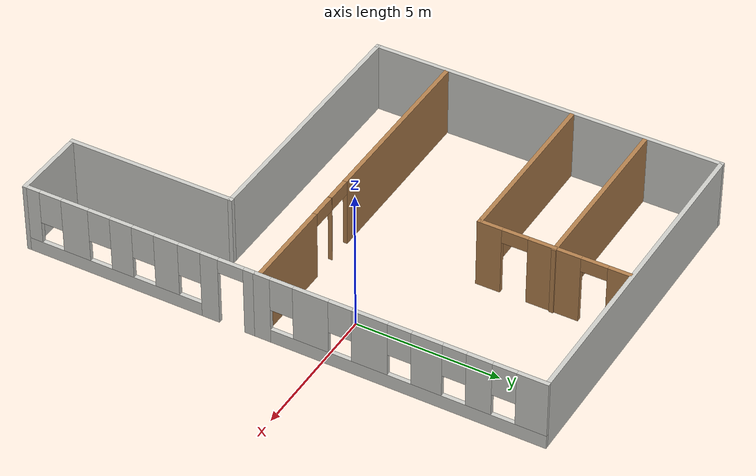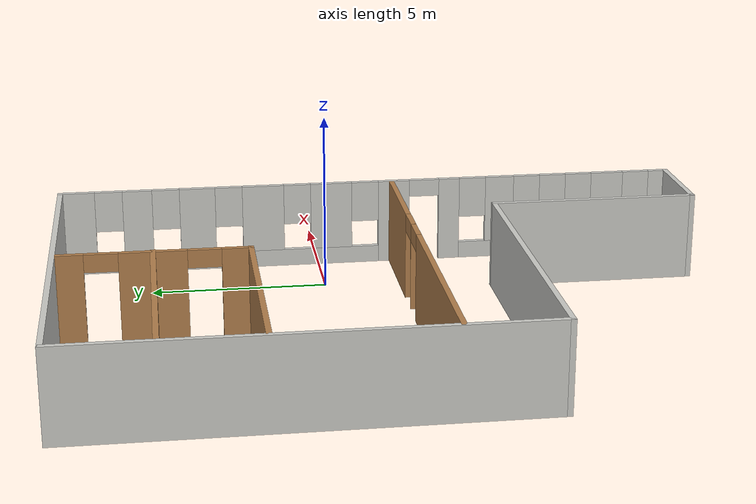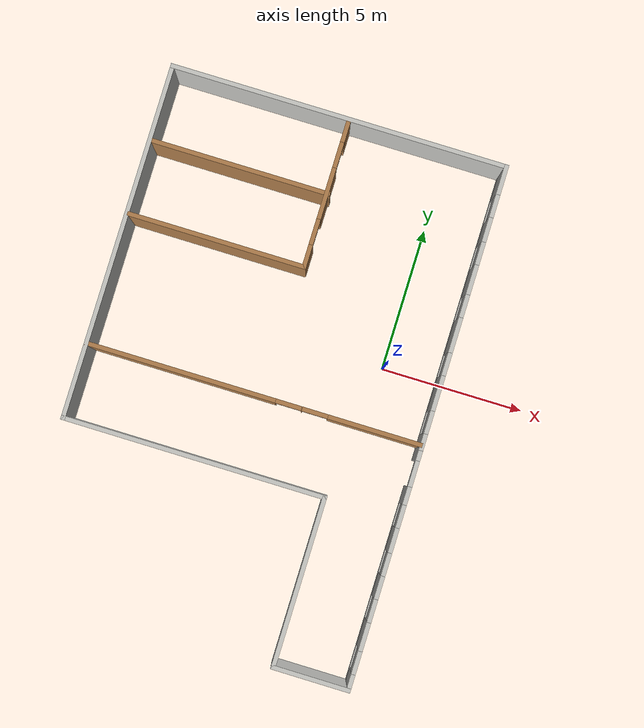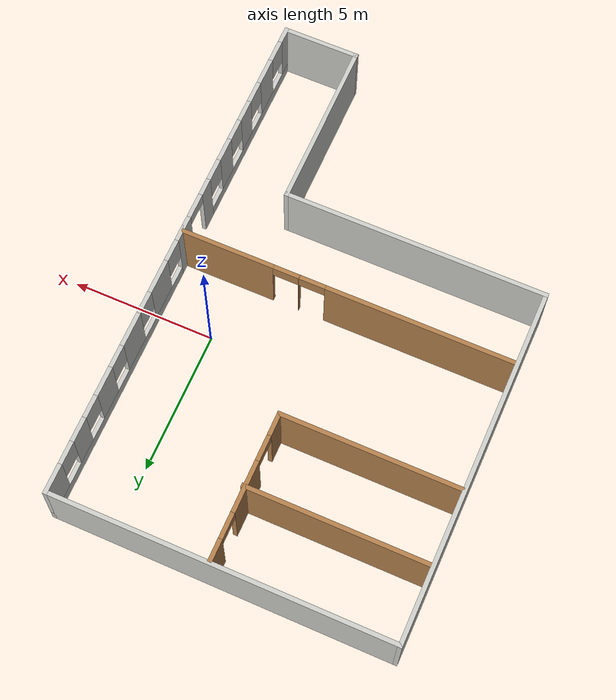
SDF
<?xml version='1.0'?>
<sdf version='1.6'>
  <model name='building'>
    <pose frame=''>-3.90248 -1.55719 0 0 -0 0</pose>
    <link name='Wall_16'>
      <pose frame=''>0.347294 6.45402 0 0 -0 1.5708</pose>
      <visual name='Wall_16_Visual_0'>
        <pose frame=''>-2.19722 0 1.25 0 -0 0</pose>
        <geometry>
          <box>
            <size>0.855557 0.15 2.5</size>
          </box>
        </geometry>
        <material>
          <script>
            <uri>file://media/materials/scripts/gazebo.material</uri>
            <name>Gazebo/Wood</name>
          </script>
          <ambient>1 1 1 1</ambient>
        </material>
        <meta>
          <layer>0</layer>
        </meta>
      </visual>
      <collision name='Wall_16_Collision_0'>
        <geometry>
          <box>
            <size>0.855557 0.15 2.5</size>
          </box>
        </geometry>
        <pose frame=''>-2.19722 0 1.25 0 -0 0</pose>
      </collision>
      <visual name='Wall_16_Visual_1'>
        <pose frame=''>0.034171 0 1.25 0 -0 0</pose>
        <geometry>
          <box>
            <size>1.80723 0.15 2.5</size>
          </box>
        </geometry>
        <material>
          <script>
            <uri>file://media/materials/scripts/gazebo.material</uri>
            <name>Gazebo/Wood</name>
          </script>
          <ambient>1 1 1 1</ambient>
        </material>
        <meta>
          <layer>0</layer>
        </meta>
      </visual>
      <collision name='Wall_16_Collision_1'>
        <geometry>
          <box>
            <size>1.80723 0.15 2.5</size>
          </box>
        </geometry>
        <pose frame=''>0.034171 0 1.25 0 -0 0</pose>
      </collision>
      <visual name='Wall_16_Visual_2'>
        <pose frame=''>2.23139 0 1.25 0 -0 0</pose>
        <geometry>
          <box>
            <size>0.787216 0.15 2.5</size>
          </box>
        </geometry>
        <material>
          <script>
            <uri>file://media/materials/scripts/gazebo.material</uri>
            <name>Gazebo/Wood</name>
          </script>
          <ambient>1 1 1 1</ambient>
        </material>
        <meta>
          <layer>0</layer>
        </meta>
      </visual>
      <collision name='Wall_16_Collision_2'>
        <geometry>
          <box>
            <size>0.787216 0.15 2.5</size>
          </box>
        </geometry>
        <pose frame=''>2.23139 0 1.25 0 -0 0</pose>
      </collision>
      <visual name='Wall_16_Visual_3'>
        <pose frame=''>-1.31944 0 2.25 0 -0 0</pose>
        <geometry>
          <box>
            <size>0.9 0.15 0.5</size>
          </box>
        </geometry>
        <material>
          <script>
            <uri>file://media/materials/scripts/gazebo.material</uri>
            <name>Gazebo/Wood</name>
          </script>
          <ambient>1 1 1 1</ambient>
        </material>
        <meta>
          <layer>0</layer>
        </meta>
      </visual>
      <collision name='Wall_16_Collision_3'>
        <geometry>
          <box>
            <size>0.9 0.15 0.5</size>
          </box>
        </geometry>
        <pose frame=''>-1.31944 0 2.25 0 -0 0</pose>
      </collision>
      <visual name='Wall_16_Visual_4'>
        <pose frame=''>1.38778 0 2.25 0 -0 0</pose>
        <geometry>
          <box>
            <size>0.9 0.15 0.5</size>
          </box>
        </geometry>
        <material>
          <script>
            <uri>file://media/materials/scripts/gazebo.material</uri>
            <name>Gazebo/Wood</name>
          </script>
          <ambient>1 1 1 1</ambient>
        </material>
        <meta>
          <layer>0</layer>
        </meta>
      </visual>
      <collision name='Wall_16_Collision_4'>
        <geometry>
          <box>
            <size>0.9 0.15 0.5</size>
          </box>
        </geometry>
        <pose frame=''>1.38778 0 2.25 0 -0 0</pose>
      </collision>
    </link>
    <link name='Wall_2'>
      <pose frame=''>5.85 4.17477 0 0 -0 1.5708</pose>
      <visual name='Wall_2_Visual_0'>
        <pose frame=''>-4.71198 0 1.25 0 -0 0</pose>
        <geometry>
          <box>
            <size>0.576049 0.15 2.5</size>
          </box>
        </geometry>
        <material>
          <script>
            <uri>file://media/materials/scripts/gazebo.material</uri>
            <name>Gazebo/CeilingTiled</name>
          </script>
          <ambient>0 0 1 1</ambient>
        </material>
        <meta>
          <layer>0</layer>
        </meta>
      </visual>
      <collision name='Wall_2_Collision_0'>
        <geometry>
          <box>
            <size>0.576049 0.15 2.5</size>
          </box>
        </geometry>
        <pose frame=''>-4.71198 0 1.25 0 -0 0</pose>
      </collision>
      <visual name='Wall_2_Visual_1'>
        <pose frame=''>0.288024 0 0.25 0 -0 0</pose>
        <geometry>
          <box>
            <size>9.42395 0.15 0.5</size>
          </box>
        </geometry>
        <material>
          <script>
            <uri>file://media/materials/scripts/gazebo.material</uri>
            <name>Gazebo/CeilingTiled</name>
          </script>
          <ambient>0 0 1 1</ambient>
        </material>
        <meta>
          <layer>0</layer>
        </meta>
      </visual>
      <collision name='Wall_2_Collision_1'>
        <geometry>
          <box>
            <size>9.42395 0.15 0.5</size>
          </box>
        </geometry>
        <pose frame=''>0.288024 0 0.25 0 -0 0</pose>
      </collision>
      <visual name='Wall_2_Visual_2'>
        <pose frame=''>-3.00874 0 1.5 0 -0 0</pose>
        <geometry>
          <box>
            <size>1.23042 0.15 2</size>
          </box>
        </geometry>
        <material>
          <script>
            <uri>file://media/materials/scripts/gazebo.material</uri>
            <name>Gazebo/CeilingTiled</name>
          </script>
          <ambient>0 0 1 1</ambient>
        </material>
        <meta>
          <layer>0</layer>
        </meta>
      </visual>
      <collision name='Wall_2_Collision_2'>
        <geometry>
          <box>
            <size>1.23042 0.15 2</size>
          </box>
        </geometry>
        <pose frame=''>-3.00874 0 1.5 0 -0 0</pose>
      </collision>
      <visual name='Wall_2_Visual_3'>
        <pose frame=''>-0.978321 0 1.5 0 -0 0</pose>
        <geometry>
          <box>
            <size>1.23042 0.15 2</size>
          </box>
        </geometry>
        <material>
          <script>
            <uri>file://media/materials/scripts/gazebo.material</uri>
            <name>Gazebo/CeilingTiled</name>
          </script>
          <ambient>0 0 1 1</ambient>
        </material>
        <meta>
          <layer>0</layer>
        </meta>
      </visual>
      <collision name='Wall_2_Collision_3'>
        <geometry>
          <box>
            <size>1.23042 0.15 2</size>
          </box>
        </geometry>
        <pose frame=''>-0.978321 0 1.5 0 -0 0</pose>
      </collision>
      <visual name='Wall_2_Visual_4'>
        <pose frame=''>0.959807 0 1.5 0 -0 0</pose>
        <geometry>
          <box>
            <size>1.04584 0.15 2</size>
          </box>
        </geometry>
        <material>
          <script>
            <uri>file://media/materials/scripts/gazebo.material</uri>
            <name>Gazebo/CeilingTiled</name>
          </script>
          <ambient>0 0 1 1</ambient>
        </material>
        <meta>
          <layer>0</layer>
        </meta>
      </visual>
      <collision name='Wall_2_Collision_4'>
        <geometry>
          <box>
            <size>1.04584 0.15 2</size>
          </box>
        </geometry>
        <pose frame=''>0.959807 0 1.5 0 -0 0</pose>
      </collision>
      <visual name='Wall_2_Visual_5'>
        <pose frame=''>2.71335 0 1.5 0 -0 0</pose>
        <geometry>
          <box>
            <size>0.861252 0.15 2</size>
          </box>
        </geometry>
        <material>
          <script>
            <uri>file://media/materials/scripts/gazebo.material</uri>
            <name>Gazebo/CeilingTiled</name>
          </script>
          <ambient>0 0 1 1</ambient>
        </material>
        <meta>
          <layer>0</layer>
        </meta>
      </visual>
      <collision name='Wall_2_Collision_5'>
        <geometry>
          <box>
            <size>0.861252 0.15 2</size>
          </box>
        </geometry>
        <pose frame=''>2.71335 0 1.5 0 -0 0</pose>
      </collision>
      <visual name='Wall_2_Visual_6'>
        <pose frame=''>4.47199 0 1.5 0 -0 0</pose>
        <geometry>
          <box>
            <size>1.05602 0.15 2</size>
          </box>
        </geometry>
        <material>
          <script>
            <uri>file://media/materials/scripts/gazebo.material</uri>
            <name>Gazebo/CeilingTiled</name>
          </script>
          <ambient>0 0 1 1</ambient>
        </material>
        <meta>
          <layer>0</layer>
        </meta>
      </visual>
      <collision name='Wall_2_Collision_6'>
        <geometry>
          <box>
            <size>1.05602 0.15 2</size>
          </box>
        </geometry>
        <pose frame=''>4.47199 0 1.5 0 -0 0</pose>
      </collision>
      <visual name='Wall_2_Visual_7'>
        <pose frame=''>-4.02395 0 1.9 0 -0 0</pose>
        <geometry>
          <box>
            <size>0.8 0.15 1.2</size>
          </box>
        </geometry>
        <material>
          <script>
            <uri>file://media/materials/scripts/gazebo.material</uri>
            <name>Gazebo/CeilingTiled</name>
          </script>
          <ambient>0 0 1 1</ambient>
        </material>
        <meta>
          <layer>0</layer>
        </meta>
      </visual>
      <collision name='Wall_2_Collision_7'>
        <geometry>
          <box>
            <size>0.8 0.15 1.2</size>
          </box>
        </geometry>
        <pose frame=''>-4.02395 0 1.9 0 -0 0</pose>
      </collision>
      <visual name='Wall_2_Visual_8'>
        <pose frame=''>-1.99353 0 1.9 0 -0 0</pose>
        <geometry>
          <box>
            <size>0.8 0.15 1.2</size>
          </box>
        </geometry>
        <material>
          <script>
            <uri>file://media/materials/scripts/gazebo.material</uri>
            <name>Gazebo/CeilingTiled</name>
          </script>
          <ambient>0 0 1 1</ambient>
        </material>
        <meta>
          <layer>0</layer>
        </meta>
      </visual>
      <collision name='Wall_2_Collision_8'>
        <geometry>
          <box>
            <size>0.8 0.15 1.2</size>
          </box>
        </geometry>
        <pose frame=''>-1.99353 0 1.9 0 -0 0</pose>
      </collision>
      <visual name='Wall_2_Visual_9'>
        <pose frame=''>0.036889 0 1.9 0 -0 0</pose>
        <geometry>
          <box>
            <size>0.8 0.15 1.2</size>
          </box>
        </geometry>
        <material>
          <script>
            <uri>file://media/materials/scripts/gazebo.material</uri>
            <name>Gazebo/CeilingTiled</name>
          </script>
          <ambient>0 0 1 1</ambient>
        </material>
        <meta>
          <layer>0</layer>
        </meta>
      </visual>
      <collision name='Wall_2_Collision_9'>
        <geometry>
          <box>
            <size>0.8 0.15 1.2</size>
          </box>
        </geometry>
        <pose frame=''>0.036889 0 1.9 0 -0 0</pose>
      </collision>
      <visual name='Wall_2_Visual_10'>
        <pose frame=''>1.88272 0 1.9 0 -0 0</pose>
        <geometry>
          <box>
            <size>0.8 0.15 1.2</size>
          </box>
        </geometry>
        <material>
          <script>
            <uri>file://media/materials/scripts/gazebo.material</uri>
            <name>Gazebo/CeilingTiled</name>
          </script>
          <ambient>0 0 1 1</ambient>
        </material>
        <meta>
          <layer>0</layer>
        </meta>
      </visual>
      <collision name='Wall_2_Collision_10'>
        <geometry>
          <box>
            <size>0.8 0.15 1.2</size>
          </box>
        </geometry>
        <pose frame=''>1.88272 0 1.9 0 -0 0</pose>
      </collision>
      <visual name='Wall_2_Visual_11'>
        <pose frame=''>3.54398 0 1.9 0 -0 0</pose>
        <geometry>
          <box>
            <size>0.8 0.15 1.2</size>
          </box>
        </geometry>
        <material>
          <script>
            <uri>file://media/materials/scripts/gazebo.material</uri>
            <name>Gazebo/CeilingTiled</name>
          </script>
          <ambient>0 0 1 1</ambient>
        </material>
        <meta>
          <layer>0</layer>
        </meta>
      </visual>
      <collision name='Wall_2_Collision_11'>
        <geometry>
          <box>
            <size>0.8 0.15 1.2</size>
          </box>
        </geometry>
        <pose frame=''>3.54398 0 1.9 0 -0 0</pose>
      </collision>
    </link>
    <link name='Wall_34'>
      <pose frame=''>5.85 -4.92523 0 0 0 -1.5708</pose>
      <visual name='Wall_34_Visual_0'>
        <pose frame=''>-3.99587 0 1.25 0 -0 0</pose>
        <geometry>
          <box>
            <size>0.50826 0.15 2.5</size>
          </box>
        </geometry>
        <material>
          <script>
            <uri>file://media/materials/scripts/gazebo.material</uri>
            <name>Gazebo/CeilingTiled</name>
          </script>
          <ambient>0 0 1 1</ambient>
        </material>
        <meta>
          <layer>0</layer>
        </meta>
      </visual>
      <collision name='Wall_34_Collision_0'>
        <geometry>
          <box>
            <size>0.50826 0.15 2.5</size>
          </box>
        </geometry>
        <pose frame=''>-3.99587 0 1.25 0 -0 0</pose>
      </collision>
      <visual name='Wall_34_Visual_1'>
        <pose frame=''>-2.52841 0 1.25 0 -0 0</pose>
        <geometry>
          <box>
            <size>0.626669 0.15 2.5</size>
          </box>
        </geometry>
        <material>
          <script>
            <uri>file://media/materials/scripts/gazebo.material</uri>
            <name>Gazebo/CeilingTiled</name>
          </script>
          <ambient>0 0 1 1</ambient>
        </material>
        <meta>
          <layer>0</layer>
        </meta>
      </visual>
      <collision name='Wall_34_Collision_1'>
        <geometry>
          <box>
            <size>0.626669 0.15 2.5</size>
          </box>
        </geometry>
        <pose frame=''>-2.52841 0 1.25 0 -0 0</pose>
      </collision>
      <visual name='Wall_34_Visual_2'>
        <pose frame=''>1.01746 0 0.25 0 -0 0</pose>
        <geometry>
          <box>
            <size>6.46507 0.15 0.5</size>
          </box>
        </geometry>
        <material>
          <script>
            <uri>file://media/materials/scripts/gazebo.material</uri>
            <name>Gazebo/CeilingTiled</name>
          </script>
          <ambient>0 0 1 1</ambient>
        </material>
        <meta>
          <layer>0</layer>
        </meta>
      </visual>
      <collision name='Wall_34_Collision_2'>
        <geometry>
          <box>
            <size>6.46507 0.15 0.5</size>
          </box>
        </geometry>
        <pose frame=''>1.01746 0 0.25 0 -0 0</pose>
      </collision>
      <visual name='Wall_34_Visual_3'>
        <pose frame=''>-0.984445 0 1.5 0 -0 0</pose>
        <geometry>
          <box>
            <size>0.861252 0.15 2</size>
          </box>
        </geometry>
        <material>
          <script>
            <uri>file://media/materials/scripts/gazebo.material</uri>
            <name>Gazebo/CeilingTiled</name>
          </script>
          <ambient>0 0 1 1</ambient>
        </material>
        <meta>
          <layer>0</layer>
        </meta>
      </visual>
      <collision name='Wall_34_Collision_3'>
        <geometry>
          <box>
            <size>0.861252 0.15 2</size>
          </box>
        </geometry>
        <pose frame=''>-0.984445 0 1.5 0 -0 0</pose>
      </collision>
      <visual name='Wall_34_Visual_4'>
        <pose frame=''>0.646044 0 1.5 0 -0 0</pose>
        <geometry>
          <box>
            <size>0.799725 0.15 2</size>
          </box>
        </geometry>
        <material>
          <script>
            <uri>file://media/materials/scripts/gazebo.material</uri>
            <name>Gazebo/CeilingTiled</name>
          </script>
          <ambient>0 0 1 1</ambient>
        </material>
        <meta>
          <layer>0</layer>
        </meta>
      </visual>
      <collision name='Wall_34_Collision_4'>
        <geometry>
          <box>
            <size>0.799725 0.15 2</size>
          </box>
        </geometry>
        <pose frame=''>0.646044 0 1.5 0 -0 0</pose>
      </collision>
      <visual name='Wall_34_Visual_5'>
        <pose frame=''>2.33806 0 1.5 0 -0 0</pose>
        <geometry>
          <box>
            <size>0.984308 0.15 2</size>
          </box>
        </geometry>
        <material>
          <script>
            <uri>file://media/materials/scripts/gazebo.material</uri>
            <name>Gazebo/CeilingTiled</name>
          </script>
          <ambient>0 0 1 1</ambient>
        </material>
        <meta>
          <layer>0</layer>
        </meta>
      </visual>
      <collision name='Wall_34_Collision_5'>
        <geometry>
          <box>
            <size>0.984308 0.15 2</size>
          </box>
        </geometry>
        <pose frame=''>2.33806 0 1.5 0 -0 0</pose>
      </collision>
      <visual name='Wall_34_Visual_6'>
        <pose frame=''>3.94011 0 1.5 0 -0 0</pose>
        <geometry>
          <box>
            <size>0.619785 0.15 2</size>
          </box>
        </geometry>
        <material>
          <script>
            <uri>file://media/materials/scripts/gazebo.material</uri>
            <name>Gazebo/CeilingTiled</name>
          </script>
          <ambient>0 0 1 1</ambient>
        </material>
        <meta>
          <layer>0</layer>
        </meta>
      </visual>
      <collision name='Wall_34_Collision_6'>
        <geometry>
          <box>
            <size>0.619785 0.15 2</size>
          </box>
        </geometry>
        <pose frame=''>3.94011 0 1.5 0 -0 0</pose>
      </collision>
      <visual name='Wall_34_Visual_7'>
        <pose frame=''>-1.81507 0 1.9 0 -0 0</pose>
        <geometry>
          <box>
            <size>0.8 0.15 1.2</size>
          </box>
        </geometry>
        <material>
          <script>
            <uri>file://media/materials/scripts/gazebo.material</uri>
            <name>Gazebo/CeilingTiled</name>
          </script>
          <ambient>0 0 1 1</ambient>
        </material>
        <meta>
          <layer>0</layer>
        </meta>
      </visual>
      <collision name='Wall_34_Collision_7'>
        <geometry>
          <box>
            <size>0.8 0.15 1.2</size>
          </box>
        </geometry>
        <pose frame=''>-1.81507 0 1.9 0 -0 0</pose>
      </collision>
      <visual name='Wall_34_Visual_8'>
        <pose frame=''>-0.153819 0 1.9 0 -0 0</pose>
        <geometry>
          <box>
            <size>0.8 0.15 1.2</size>
          </box>
        </geometry>
        <material>
          <script>
            <uri>file://media/materials/scripts/gazebo.material</uri>
            <name>Gazebo/CeilingTiled</name>
          </script>
          <ambient>0 0 1 1</ambient>
        </material>
        <meta>
          <layer>0</layer>
        </meta>
      </visual>
      <collision name='Wall_34_Collision_8'>
        <geometry>
          <box>
            <size>0.8 0.15 1.2</size>
          </box>
        </geometry>
        <pose frame=''>-0.153819 0 1.9 0 -0 0</pose>
      </collision>
      <visual name='Wall_34_Visual_9'>
        <pose frame=''>1.44591 0 1.9 0 -0 0</pose>
        <geometry>
          <box>
            <size>0.8 0.15 1.2</size>
          </box>
        </geometry>
        <material>
          <script>
            <uri>file://media/materials/scripts/gazebo.material</uri>
            <name>Gazebo/CeilingTiled</name>
          </script>
          <ambient>0 0 1 1</ambient>
        </material>
        <meta>
          <layer>0</layer>
        </meta>
      </visual>
      <collision name='Wall_34_Collision_9'>
        <geometry>
          <box>
            <size>0.8 0.15 1.2</size>
          </box>
        </geometry>
        <pose frame=''>1.44591 0 1.9 0 -0 0</pose>
      </collision>
      <visual name='Wall_34_Visual_10'>
        <pose frame=''>3.23021 0 1.9 0 -0 0</pose>
        <geometry>
          <box>
            <size>0.8 0.15 1.2</size>
          </box>
        </geometry>
        <material>
          <script>
            <uri>file://media/materials/scripts/gazebo.material</uri>
            <name>Gazebo/CeilingTiled</name>
          </script>
          <ambient>0 0 1 1</ambient>
        </material>
        <meta>
          <layer>0</layer>
        </meta>
      </visual>
      <collision name='Wall_34_Collision_10'>
        <geometry>
          <box>
            <size>0.8 0.15 1.2</size>
          </box>
        </geometry>
        <pose frame=''>3.23021 0 1.9 0 -0 0</pose>
      </collision>
      <visual name='Wall_34_Visual_11'>
        <pose frame=''>-3.29174 0 2.25 0 -0 0</pose>
        <geometry>
          <box>
            <size>0.9 0.15 0.5</size>
          </box>
        </geometry>
        <material>
          <script>
            <uri>file://media/materials/scripts/gazebo.material</uri>
            <name>Gazebo/CeilingTiled</name>
          </script>
          <ambient>0 0 1 1</ambient>
        </material>
        <meta>
          <layer>0</layer>
        </meta>
      </visual>
      <collision name='Wall_34_Collision_11'>
        <geometry>
          <box>
            <size>0.9 0.15 0.5</size>
          </box>
        </geometry>
        <pose frame=''>-3.29174 0 2.25 0 -0 0</pose>
      </collision>
    </link>
    <link name='Wall_36'>
      <collision name='Wall_36_Collision'>
        <geometry>
          <box>
            <size>2.75 0.15 2.5</size>
          </box>
        </geometry>
        <pose frame=''>0 0 1.25 0 -0 0</pose>
      </collision>
      <visual name='Wall_36_Visual'>
        <pose frame=''>0 0 1.25 0 -0 0</pose>
        <geometry>
          <box>
            <size>2.75 0.15 2.5</size>
          </box>
        </geometry>
        <material>
          <script>
            <uri>file://media/materials/scripts/gazebo.material</uri>
            <name>Gazebo/CeilingTiled</name>
          </script>
          <ambient>0 0 1 1</ambient>
        </material>
        <meta>
          <layer>0</layer>
        </meta>
      </visual>
      <pose frame=''>4.55 -9.10023 0 0 -0 3.14159</pose>
    </link>
    <link name='Wall_37'>
      <collision name='Wall_37_Collision'>
        <geometry>
          <box>
            <size>6 0.15 2.5</size>
          </box>
        </geometry>
        <pose frame=''>0 0 1.25 0 -0 0</pose>
      </collision>
      <visual name='Wall_37_Visual'>
        <pose frame=''>0 0 1.25 0 -0 0</pose>
        <geometry>
          <box>
            <size>6 0.15 2.5</size>
          </box>
        </geometry>
        <material>
          <script>
            <uri>file://media/materials/scripts/gazebo.material</uri>
            <name>Gazebo/CeilingTiled</name>
          </script>
          <ambient>0 0 1 1</ambient>
        </material>
        <meta>
          <layer>0</layer>
        </meta>
      </visual>
      <pose frame=''>3.25 -6.17523 0 0 -0 1.5708</pose>
    </link>
    <link name='Wall_38'>
      <collision name='Wall_38_Collision'>
        <geometry>
          <box>
            <size>9.25 0.15 2.5</size>
          </box>
        </geometry>
        <pose frame=''>0 0 1.25 0 -0 0</pose>
      </collision>
      <visual name='Wall_38_Visual'>
        <pose frame=''>0 0 1.25 0 -0 0</pose>
        <geometry>
          <box>
            <size>9.25 0.15 2.5</size>
          </box>
        </geometry>
        <material>
          <script>
            <uri>file://media/materials/scripts/gazebo.material</uri>
            <name>Gazebo/CeilingTiled</name>
          </script>
          <ambient>0 0 1 1</ambient>
        </material>
        <meta>
          <layer>0</layer>
        </meta>
      </visual>
      <pose frame=''>-1.3 -3.25023 0 0 -0 3.14159</pose>
    </link>
    <link name='Wall_39'>
      <collision name='Wall_39_Collision'>
        <geometry>
          <box>
            <size>12.5009 0.15 2.5</size>
          </box>
        </geometry>
        <pose frame=''>0 0 1.25 0 -0 0</pose>
      </collision>
      <visual name='Wall_39_Visual'>
        <pose frame=''>0 0 1.25 0 -0 0</pose>
        <geometry>
          <box>
            <size>12.5009 0.15 2.5</size>
          </box>
        </geometry>
        <material>
          <script>
            <uri>file://media/materials/scripts/gazebo.material</uri>
            <name>Gazebo/CeilingTiled</name>
          </script>
          <ambient>0 0 1 1</ambient>
        </material>
        <meta>
          <layer>0</layer>
        </meta>
      </visual>
      <pose frame=''>-5.85 2.92477 0 0 -0 1.5708</pose>
    </link>
    <link name='Wall_41'>
      <collision name='Wall_41_Collision'>
        <geometry>
          <box>
            <size>11.75 0.15 2.5</size>
          </box>
        </geometry>
        <pose frame=''>0 0 1.25 0 -0 0</pose>
      </collision>
      <visual name='Wall_41_Visual'>
        <pose frame=''>0 0 1.25 0 -0 0</pose>
        <geometry>
          <box>
            <size>11.75 0.15 2.5</size>
          </box>
        </geometry>
        <material>
          <script>
            <uri>file://media/materials/scripts/gazebo.material</uri>
            <name>Gazebo/CeilingTiled</name>
          </script>
          <ambient>0 0 1 1</ambient>
        </material>
        <meta>
          <layer>0</layer>
        </meta>
      </visual>
      <pose frame=''>-0.05 9.09977 0 0 -0 0</pose>
    </link>
    <link name='Wall_43'>
      <collision name='Wall_43_Collision'>
        <geometry>
          <box>
            <size>6.25 0.15 2.5</size>
          </box>
        </geometry>
        <pose frame=''>0 0 1.25 0 -0 0</pose>
      </collision>
      <visual name='Wall_43_Visual'>
        <pose frame=''>0 0 1.25 0 -0 0</pose>
        <geometry>
          <box>
            <size>6.25 0.15 2.5</size>
          </box>
        </geometry>
        <material>
          <script>
            <uri>file://media/materials/scripts/gazebo.material</uri>
            <name>Gazebo/Wood</name>
          </script>
          <ambient>1 1 1 1</ambient>
        </material>
        <meta>
          <layer>0</layer>
        </meta>
      </visual>
      <pose frame=''>-2.70271 3.90402 0 0 -0 3.14159</pose>
    </link>
    <link name='Wall_45'>
      <collision name='Wall_45_Collision'>
        <geometry>
          <box>
            <size>6.25 0.15 2.5</size>
          </box>
        </geometry>
        <pose frame=''>0 0 1.25 0 -0 0</pose>
      </collision>
      <visual name='Wall_45_Visual'>
        <pose frame=''>0 0 1.25 0 -0 0</pose>
        <geometry>
          <box>
            <size>6.25 0.15 2.5</size>
          </box>
        </geometry>
        <material>
          <script>
            <uri>file://media/materials/scripts/gazebo.material</uri>
            <name>Gazebo/Wood</name>
          </script>
          <ambient>1 1 1 1</ambient>
        </material>
        <meta>
          <layer>0</layer>
        </meta>
      </visual>
      <pose frame=''>-2.65381 6.48819 0 0 -0 3.14159</pose>
    </link>
    <link name='Wall_47'>
      <pose frame=''>-0.018122 -0.649042 0 0 -0 0</pose>
      <visual name='Wall_47_Visual_0'>
        <pose frame=''>-2.55541 0 1.25 0 -0 0</pose>
        <geometry>
          <box>
            <size>6.63918 0.15 2.5</size>
          </box>
        </geometry>
        <material>
          <script>
            <uri>file://media/materials/scripts/gazebo.material</uri>
            <name>Gazebo/Wood</name>
          </script>
          <ambient>1 1 1 1</ambient>
        </material>
        <meta>
          <layer>0</layer>
        </meta>
      </visual>
      <collision name='Wall_47_Collision_0'>
        <geometry>
          <box>
            <size>6.63918 0.15 2.5</size>
          </box>
        </geometry>
        <pose frame=''>-2.55541 0 1.25 0 -0 0</pose>
      </collision>
      <visual name='Wall_47_Visual_1'>
        <pose frame=''>1.67564 0 1.25 0 -0 0</pose>
        <geometry>
          <box>
            <size>0.022918 0.15 2.5</size>
          </box>
        </geometry>
        <material>
          <script>
            <uri>file://media/materials/scripts/gazebo.material</uri>
            <name>Gazebo/Wood</name>
          </script>
          <ambient>1 1 1 1</ambient>
        </material>
        <meta>
          <layer>0</layer>
        </meta>
      </visual>
      <collision name='Wall_47_Collision_1'>
        <geometry>
          <box>
            <size>0.022918 0.15 2.5</size>
          </box>
        </geometry>
        <pose frame=''>1.67564 0 1.25 0 -0 0</pose>
      </collision>
      <visual name='Wall_47_Visual_2'>
        <pose frame=''>4.23105 0 1.25 0 -0 0</pose>
        <geometry>
          <box>
            <size>3.2879 0.15 2.5</size>
          </box>
        </geometry>
        <material>
          <script>
            <uri>file://media/materials/scripts/gazebo.material</uri>
            <name>Gazebo/Wood</name>
          </script>
          <ambient>1 1 1 1</ambient>
        </material>
        <meta>
          <layer>0</layer>
        </meta>
      </visual>
      <collision name='Wall_47_Collision_2'>
        <geometry>
          <box>
            <size>3.2879 0.15 2.5</size>
          </box>
        </geometry>
        <pose frame=''>4.23105 0 1.25 0 -0 0</pose>
      </collision>
      <visual name='Wall_47_Visual_3'>
        <pose frame=''>1.21418 0 2.25 0 -0 0</pose>
        <geometry>
          <box>
            <size>0.9 0.15 0.5</size>
          </box>
        </geometry>
        <material>
          <script>
            <uri>file://media/materials/scripts/gazebo.material</uri>
            <name>Gazebo/Wood</name>
          </script>
          <ambient>1 1 1 1</ambient>
        </material>
        <meta>
          <layer>0</layer>
        </meta>
      </visual>
      <collision name='Wall_47_Collision_3'>
        <geometry>
          <box>
            <size>0.9 0.15 0.5</size>
          </box>
        </geometry>
        <pose frame=''>1.21418 0 2.25 0 -0 0</pose>
      </collision>
      <visual name='Wall_47_Visual_4'>
        <pose frame=''>2.1371 0 2.25 0 -0 0</pose>
        <geometry>
          <box>
            <size>0.9 0.15 0.5</size>
          </box>
        </geometry>
        <material>
          <script>
            <uri>file://media/materials/scripts/gazebo.material</uri>
            <name>Gazebo/Wood</name>
          </script>
          <ambient>1 1 1 1</ambient>
        </material>
        <meta>
          <layer>0</layer>
        </meta>
      </visual>
      <collision name='Wall_47_Collision_4'>
        <geometry>
          <box>
            <size>0.9 0.15 0.5</size>
          </box>
        </geometry>
        <pose frame=''>2.1371 0 2.25 0 -0 0</pose>
      </collision>
    </link>
    <static>1</static>
  </model>
</sdf>
